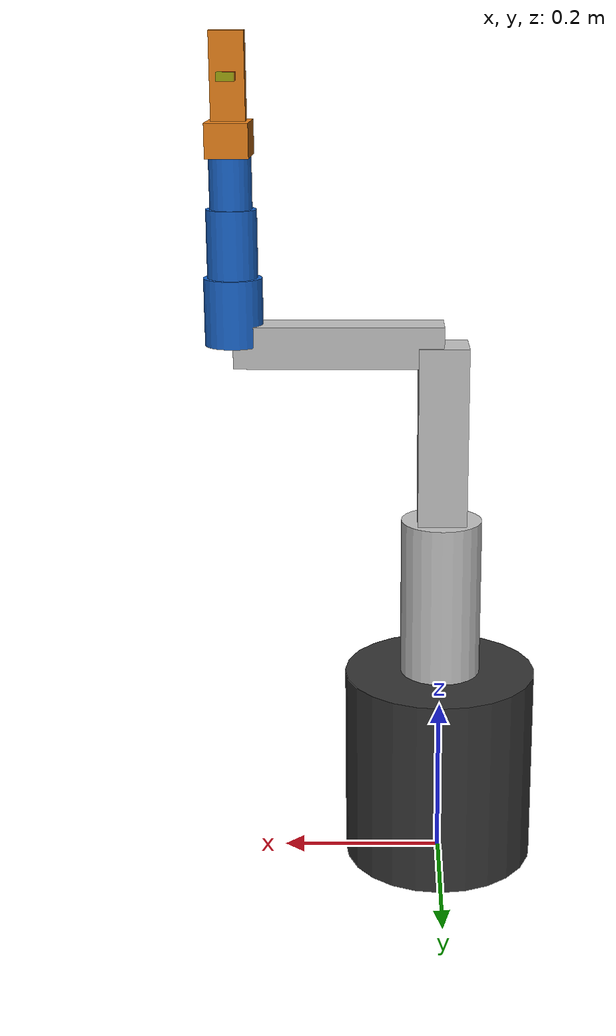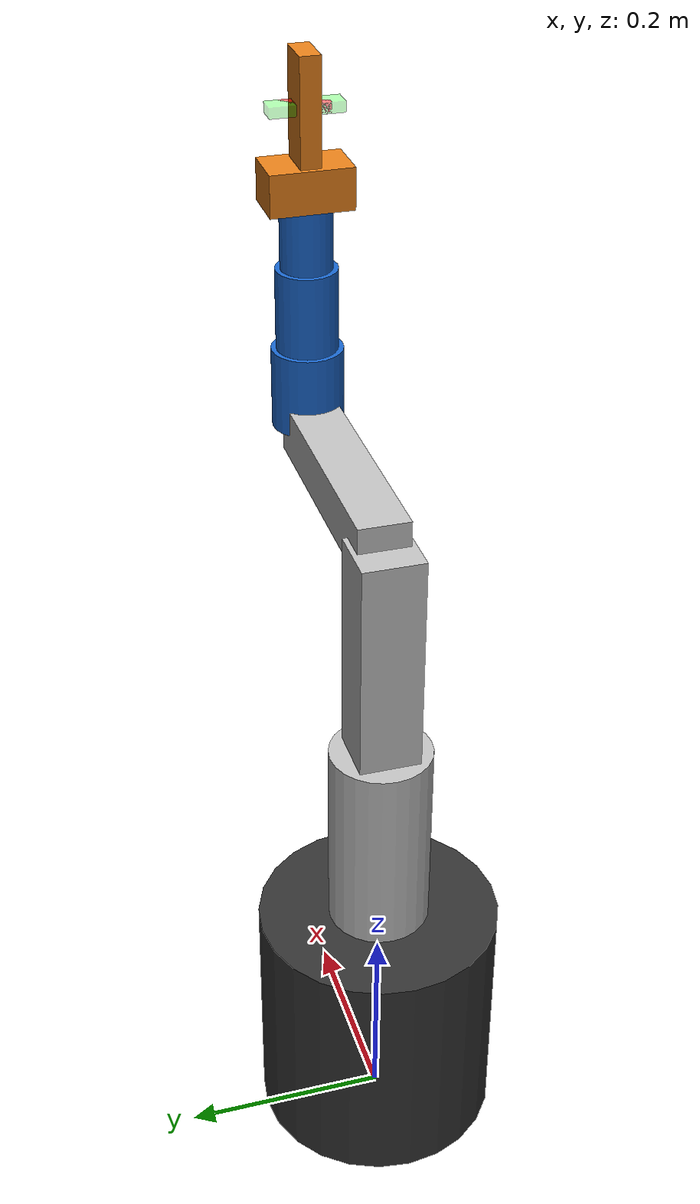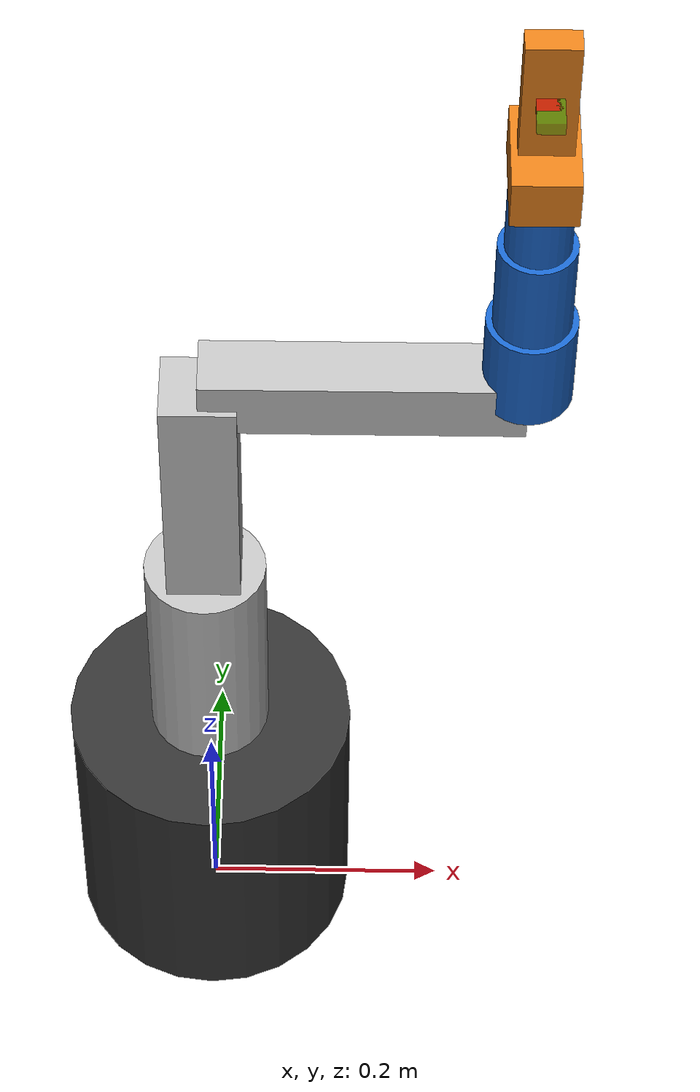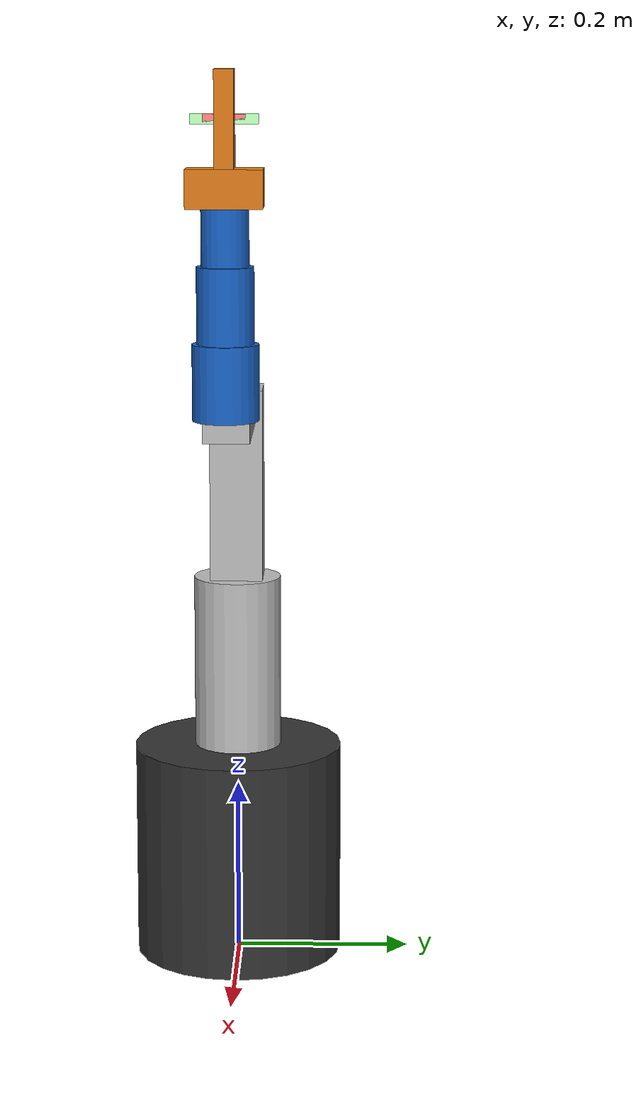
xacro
<?xml version="1.0"?>

<robot xmlns:xacro="http://www.ros.org/wiki/xacro" name="arm">

  <xacro:include filename="$(find arm_description)/urdf/materials.xacro"/>
  <xacro:include filename="$(find arm_description)/urdf/arm_ros2_control.xacro"/>
  <xacro:include filename="$(find arm_description)/urdf/arm_gazebo.xacro"/>

  <xacro:macro name="cylinder_inertia" params="m r l">
    <inertial>
      <mass value="${m}"/>
      <inertia
        ixx="${(m/12.0)*(3*r*r + l*l)}"
        ixy="0.0"  ixz="0.0"
        iyy="${(m/12.0)*(3*r*r + l*l)}"
        iyz="0.0"
        izz="${(m/2.0)*(r*r)}"/>
    </inertial>
  </xacro:macro>

  <xacro:macro name="box_inertia" params="m x y z">
    <inertial>
      <mass value="${m}"/>
      <inertia
        ixx="${(m/12.0)*(y*y + z*z)}"
        ixy="0.0" ixz="0.0"
        iyy="${(m/12.0)*(x*x + z*z)}"
        iyz="0.0"
        izz="${(m/12.0)*(x*x + y*y)}"/>
    </inertial>
  </xacro:macro>

  <link name="world"/>

  <!-- BASE LINK: cylinder r=0.12, l=0.10, m=5.0 kg                -->
  <!-- Ixx=Iyy = 5/12*(3*0.12^2+0.10^2) = 0.02567                 -->
  <!-- Izz    = 5/2*(0.12^2) = 0.036                               -->
  <link name="base_link">
    <!-- Active Base visual -->
    <visual>
      <origin xyz="0 0 0.125" rpy="0 0 0"/>
      <geometry>
        <cylinder radius="0.12" length="0.25"/>
      </geometry>
      <material name="dark_charcoal"/>
    </visual>

    <!-- Active Base collision -->
    <collision>
      <origin xyz="0 0 0.125" rpy="0 0 0"/>
      <geometry>
        <cylinder radius="0.12" length="0.25"/>
      </geometry>
    </collision>

    <!-- Active Base Inertial Properties -->
    <inertial>
      <origin xyz="0 0 0.125" rpy="0 0 0"/>
      <mass value="5.0"/>
      <inertia ixx="0.044041" ixy="0.0" ixz="0.0"
               iyy="0.044041" iyz="0.0" izz="0.036000"/>
    </inertial>
  </link>

  <joint name="world_to_base" type="fixed">
    <parent link="world"/>
    <child link="base_link"/>
    <origin xyz="0 0 0.0" rpy="0 0 0"/>
  </joint>

  <!-- LINK 1: cylinder r=0.05, l=0.15, m=2.0 kg                   -->
  <!-- Ixx=Iyy = 2/12*(3*0.05^2+0.15^2) = 0.005                   -->
  <!-- Izz    = 2/2*(0.05^2) = 0.0025                              -->
  <link name="link1">
    <visual>
      <origin xyz="0 0 0.10" rpy="0 0 0"/>
      <geometry>
        <cylinder radius="0.05" length="0.20"/>
      </geometry>
      <material name="aluminium"/>
    </visual>
    <collision>
      <origin xyz="0 0 0.10" rpy="0 0 0"/>
      <geometry>
        <cylinder radius="0.05" length="0.20"/>
      </geometry>
    </collision>
    <inertial>
      <origin xyz="0 0 0.10" rpy="0 0 0"/>
      <mass value="2.5"/>
      <inertia ixx="0.010000" ixy="0.0" ixz="0.0"
               iyy="0.010000" iyz="0.0" izz="0.010000"/>
    </inertial>
  </link>

  <!-- Joint 1: base rotation (yaw) -->
  <joint name="joint1" type="revolute">
    <parent link="base_link"/>
    <child link="link1"/>
    <origin xyz="0 0 0.25" rpy="0 0 0"/>
    <axis xyz="0 0 1"/>
    <limit lower="-3.14159" upper="3.14159"
           velocity="0.5" effort="1000.0"/>
    <dynamics damping="15.0" friction="5.0"/>
  </joint>

  <!-- LINK 2: box 0.06 x 0.06 x 0.22, m=1.5 kg (vertical shoulder)-->
  <link name="link2">
    <visual>
      <origin xyz="0 0 0.11" rpy="0 0 0"/>
      <geometry>
        <box size="0.06 0.06 0.22"/>
      </geometry>
      <material name="aluminium"/>
    </visual>
    <collision>
      <origin xyz="0 0 0.11" rpy="0 0 0"/>
      <geometry>
        <box size="0.06 0.06 0.22"/>
      </geometry>
    </collision>
    <inertial>
      <origin xyz="0 0 0.11" rpy="0 0 0"/>
      <mass value="2.0"/>
      <inertia ixx="0.010000" ixy="0.0" ixz="0.0"
               iyy="0.010000" iyz="0.0" izz="0.010000"/>
    </inertial>
  </link>

  <!-- Joint 2: shoulder pitch -->
  <joint name="joint2" type="revolute">
    <parent link="link1"/>
    <child link="link2"/>
    <origin xyz="0 0 0.20" rpy="0 0 0"/>
    <axis xyz="0 1 0"/>
    <limit lower="-3.14159" upper="3.14159"
           velocity="0.5" effort="1000.0"/>
    <dynamics damping="15.0" friction="5.0"/>
  </joint>

  <!-- LINK 3: box 0.40 x 0.05 x 0.05, m=1.2 kg (forearm)         -->
  <!-- Ixx = 1.2/12*(0.05^2+0.05^2) = 0.0005                      -->
  <!-- Iyy = 1.2/12*(0.40^2+0.05^2) = 0.01625                     -->
  <!-- Izz = 1.2/12*(0.40^2+0.05^2) = 0.01625                     -->
  <link name="link3">
    <visual>
      <origin xyz="0.125 0 0" rpy="0 0 0"/>
      <geometry>
        <box size="0.25 0.05 0.05"/>
      </geometry>
      <material name="aluminium"/>
    </visual>
    <collision>
      <origin xyz="0.125 0 0" rpy="0 0 0"/>
      <geometry>
        <box size="0.25 0.05 0.05"/>
      </geometry>
    </collision>
    <inertial>
      <origin xyz="0.125 0 0" rpy="0 0 0"/>
      <mass value="1.5"/>
      <inertia ixx="0.015000" ixy="0.0" ixz="0.0"
               iyy="0.015000" iyz="0.0" izz="0.015000"/>
    </inertial>
  </link>

  <!-- Joint 3: elbow pitch -->
  <joint name="joint3" type="revolute">
    <parent link="link2"/>
    <child link="link3"/>
    <origin xyz="0 0 0.22" rpy="0 0 0"/>
    <axis xyz="0 1 0"/>
    <limit lower="-2.5307" upper="2.5307"
           velocity="0.5" effort="1000.0"/>
    <dynamics damping="10.0" friction="3.0"/>
  </joint>

  <!-- LINK 4: cylinder r=0.035, l=0.08, m=0.8 kg (wrist roll)     -->
  <!-- Ixx=Iyy = 0.8/12*(3*0.035^2+0.08^2) = 0.000672             -->
  <!-- Izz    = 0.8/2*(0.035^2) = 0.00049                          -->
  <link name="link4">
    <visual>
      <origin xyz="0 0 0.04" rpy="0 0 0"/>
      <geometry>
        <cylinder radius="0.035" length="0.08"/>
      </geometry>
      <material name="joint_blue"/>
    </visual>
    <collision>
      <origin xyz="0 0 0.04" rpy="0 0 0"/>
      <geometry>
        <cylinder radius="0.035" length="0.08"/>
      </geometry>
    </collision>
    <inertial>
      <origin xyz="0 0 0.04" rpy="0 0 0"/>
      <mass value="1.0"/>
      <inertia ixx="0.010000" ixy="0.0" ixz="0.0"
               iyy="0.010000" iyz="0.0" izz="0.010000"/>
    </inertial>
  </link>

  <!-- Joint 4: wrist roll -->
  <joint name="joint4" type="revolute">
    <parent link="link3"/>
    <child link="link4"/>
    <origin xyz="0.25 0 0" rpy="0 0 0"/>
    <axis xyz="1 0 0"/>
    <limit lower="-3.14159" upper="3.14159"
           velocity="0.5" effort="1000.0"/>
   <dynamics damping="10.0" friction="3.0"/>
  </joint>

  <!-- LINK 5: cylinder r=0.030, l=0.08, m=0.5 kg (wrist pitch)    -->
  <!-- Ixx=Iyy = 0.5/12*(3*0.030^2+0.08^2) = 0.000379             -->
  <!-- Izz    = 0.5/2*(0.030^2) = 0.000225                         -->
  <link name="link5">
    <visual>
      <origin xyz="0 0 0.04" rpy="0 0 0"/>
      <geometry>
        <cylinder radius="0.030" length="0.08"/>
      </geometry>
      <material name="joint_blue"/>
    </visual>
    <collision>
      <origin xyz="0 0 0.04" rpy="0 0 0"/>
      <geometry>
        <cylinder radius="0.030" length="0.08"/>
      </geometry>
    </collision>
    <inertial>
      <origin xyz="0 0 0.04" rpy="0 0 0"/>
      <mass value="0.7"/>
      <inertia ixx="0.010000" ixy="0.0" ixz="0.0"
               iyy="0.010000" iyz="0.0" izz="0.010000"/>
    </inertial>
  </link>

  <!-- Joint 5: wrist pitch -->
  <joint name="joint5" type="revolute">
    <parent link="link4"/>
    <child link="link5"/>
    <origin xyz="0 0 0.08" rpy="0 0 0"/>
    <axis xyz="0 1 0"/>
    <limit lower="-3.14159" upper="3.14159"
           velocity="0.5" effort="1000.0"/>
    <dynamics damping="5.0" friction="1.0"/>
  </joint>

  <!-- LINK 6: cylinder r=0.025, l=0.06, m=0.3 kg (wrist yaw)      -->
  <!-- Ixx=Iyy = 0.3/12*(3*0.025^2+0.06^2) = 0.000137             -->
  <!-- Izz    = 0.3/2*(0.025^2) = 0.00009375                       -->
  <link name="link6">
    <visual>
      <origin xyz="0 0 0.03" rpy="0 0 0"/>
      <geometry>
        <cylinder radius="0.025" length="0.06"/>
      </geometry>
      <material name="joint_blue"/>
    </visual>
    <collision>
      <origin xyz="0 0 0.03" rpy="0 0 0"/>
      <geometry>
        <cylinder radius="0.025" length="0.06"/>
      </geometry>
    </collision>
    <inertial>
      <origin xyz="0 0 0.03" rpy="0 0 0"/>
      <mass value="0.5"/>
      <inertia ixx="0.010000" ixy="0.0" ixz="0.0"
               iyy="0.010000" iyz="0.0" izz="0.010000"/>
    </inertial>
  </link>

  <!-- Joint 6: wrist yaw — velocity capped to 0.5, effort reduced -->
  <joint name="joint6" type="revolute">
    <parent link="link5"/>
    <child link="link6"/>
    <origin xyz="0 0 0.08" rpy="0 0 0"/>
    <axis xyz="0 0 1"/>
    <limit lower="-3.14159" upper="3.14159"
           velocity="0.5" effort="1000.0"/>
   <dynamics damping="5.0" friction="1.0"/>
  </joint>

  <!-- GRIPPER BASE: box 0.05 x 0.08 x 0.04, m=0.3 kg             -->
  <!-- Ixx = 0.3/12*(0.08^2+0.04^2) = 0.0002                      -->
  <!-- Iyy = 0.3/12*(0.05^2+0.04^2) = 0.000103                    -->
  <!-- Izz = 0.3/12*(0.05^2+0.08^2) = 0.000223                    -->
  <link name="gripper_base_link">
    <visual>
      <origin xyz="0 0 0.02" rpy="0 0 0"/>
      <geometry>
        <box size="0.05 0.08 0.04"/>
      </geometry>
      <material name="gripper_orange"/>
    </visual>
    <collision>
      <origin xyz="0 0 0.02" rpy="0 0 0"/>
      <geometry>
        <box size="0.05 0.08 0.04"/>
      </geometry>
    </collision>
    <inertial>
      <origin xyz="0 0 0.02" rpy="0 0 0"/>
      <mass value="0.3"/>
      <inertia ixx="0.010000" ixy="0.0" ixz="0.0"
               iyy="0.010000" iyz="0.0" izz="0.010000"/>
    </inertial>
  </link>

  <joint name="joint6_to_gripper" type="fixed">
    <parent link="link6"/>
    <child link="gripper_base_link"/>
    <origin xyz="0 0 0.06" rpy="0 0 0"/>
  </joint>

  <!-- LEFT FINGER: box 0.04 x 0.04 x 0.10, m=0.15 kg              -->
  <!-- Wide flat contact pad for maximum grip surface area           -->
  <link name="left_finger_link">
    <visual>
      <origin xyz="0 0 0.05" rpy="0 0 0"/>
      <geometry>
        <box size="0.04 0.02 0.10"/>
      </geometry>
      <material name="gripper_orange"/>
    </visual>
    <collision>
      <origin xyz="0 0 0.05" rpy="0 0 0"/>
      <geometry>
        <box size="0.04 0.02 0.10"/>
      </geometry>
    </collision>
    <inertial>
      <origin xyz="0 0 0.05" rpy="0 0 0"/>
      <mass value="0.15"/>
      <inertia ixx="0.010000" ixy="0.0" ixz="0.0"
               iyy="0.010000" iyz="0.0" izz="0.010000"/>
    </inertial>
  </link>

  <joint name="left_finger_joint" type="prismatic">
    <parent link="gripper_base_link"/>
    <child link="left_finger_link"/>
    <origin xyz="0 0 0.04" rpy="0 0 0"/>
    <axis xyz="0 1 0"/>
    <limit lower="0.0" upper="0.05" velocity="0.05" effort="20.0"/>
    <dynamics damping="2.0" friction="0.5"/>
  </joint>

  <!-- RIGHT FINGER: box 0.04 x 0.04 x 0.10, m=0.15 kg             -->
  <!-- Wide flat contact pad for maximum grip surface area           -->
  <link name="right_finger_link">
    <visual>
      <origin xyz="0 0 0.05" rpy="0 0 0"/>
      <geometry>
        <box size="0.04 0.02 0.10"/>
      </geometry>
      <material name="gripper_orange"/>
    </visual>
    <collision>
      <origin xyz="0 0 0.05" rpy="0 0 0"/>
      <geometry>
        <box size="0.04 0.02 0.10"/>
      </geometry>
    </collision>
    <inertial>
      <origin xyz="0 0 0.05" rpy="0 0 0"/>
      <mass value="0.15"/>
      <inertia ixx="0.010000" ixy="0.0" ixz="0.0"
               iyy="0.010000" iyz="0.0" izz="0.010000"/>
    </inertial>
  </link>

  <joint name="right_finger_joint" type="prismatic">
    <parent link="gripper_base_link"/>
    <child link="right_finger_link"/>
    <origin xyz="0 0 0.04" rpy="0 0 0"/>
    <axis xyz="0 -1 0"/>
    <limit lower="0.0" upper="0.05" velocity="0.05" effort="20.0"/>
    <dynamics damping="2.0" friction="0.5"/>
  </joint>

  <link name="tool0"/>

  <joint name="gripper_to_tool0" type="fixed">
    <parent link="gripper_base_link"/>
    <child link="tool0"/>
    <!-- z=0.09: grasp center between the 10cm long fingers -->
    <origin xyz="0 0 0.09" rpy="0 0 0"/>
  </joint>

  <!-- Debug Marker: Open Width (0.07m gap) -->
  <link name="debug_open_marker">
    <visual>
      <origin xyz="0 0 0.09" rpy="0 0 0"/>
      <geometry>
        <box size="0.02 0.07 0.01"/>
      </geometry>
      <material name="debug_green">
        <color rgba="0 1 0 0.3"/>
      </material>
    </visual>
  </link>
  <joint name="debug_open_joint" type="fixed">
    <parent link="gripper_base_link"/>
    <child link="debug_open_marker"/>
  </joint>

  <!-- Debug Marker: Closed Width (0.044m gap) -->
  <link name="debug_closed_marker">
    <visual>
      <origin xyz="0 0 0.09" rpy="0 0 0"/>
      <geometry>
        <box size="0.02 0.044 0.01"/>
      </geometry>
      <material name="debug_red">
        <color rgba="1 0 0 0.5"/>
      </material>
    </visual>
  </link>
  <joint name="debug_closed_joint" type="fixed">
    <parent link="gripper_base_link"/>
    <child link="debug_closed_marker"/>
  </joint>

</robot>

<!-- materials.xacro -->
<robot xmlns:xacro="http://www.ros.org/wiki/xacro" name="arm_materials">

  <material name="dark_charcoal">
    <color rgba="0.2 0.2 0.2 1.0"/>
  </material>

  <material name="aluminium">
    <color rgba="0.75 0.75 0.75 1.0"/>
  </material>

  <material name="joint_blue">
    <color rgba="0.1 0.4 0.8 1.0"/>
  </material>

  <material name="gripper_orange">
    <color rgba="0.9 0.5 0.1 1.0"/>
  </material>

  <material name="red">
    <color rgba="0.8 0.1 0.1 1.0"/>
  </material>

  <material name="white">
    <color rgba="1.0 1.0 1.0 1.0"/>
  </material>

  <material name="yellow">
    <color rgba="0.9 0.9 0.0 1.0"/>
  </material>

</robot>
